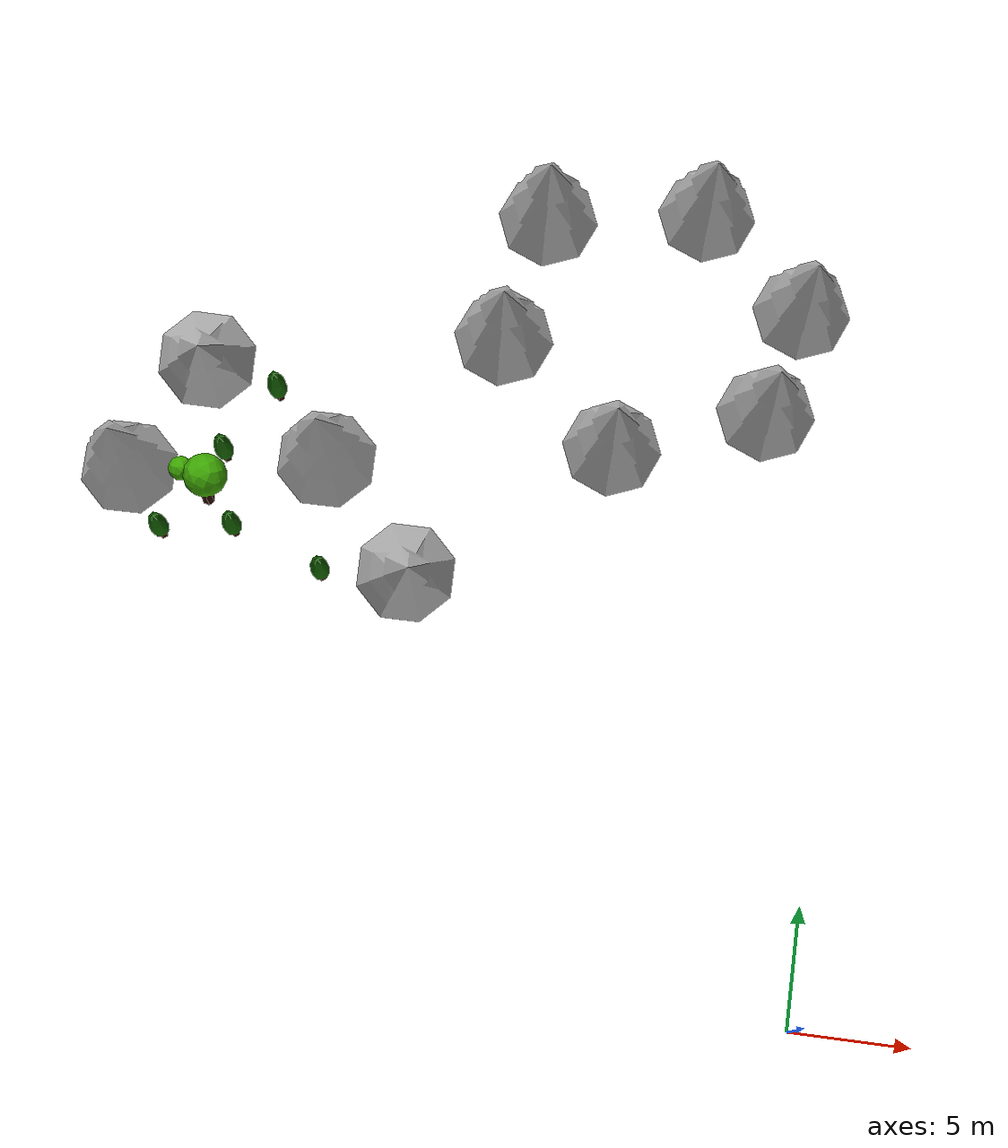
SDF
<sdf version="1.9">
 <world name="test">
  <model name="lowpolytree_1_7">
   <static>true</static>
   <link name="lowpolytree_1">
    <collision name="lowpolytree_1_collision">
     <geometry>
      <mesh>
       <uri>file:///home/ace-rv/rs1_ros2_ws/install/rs1_environment/share/rs1_environment/models/lowpolytree_1/model://lowpolytree_1/meshes/lowpolytree_1.dae</uri>
      </mesh>
     </geometry>
    </collision>
    <visual name="lowpolytree_1_visual">
     <geometry>
      <mesh>
       <uri>file:///home/ace-rv/rs1_ros2_ws/install/rs1_environment/share/rs1_environment/models/lowpolytree_1/model://lowpolytree_1/meshes/lowpolytree_1.dae</uri>
      </mesh>
     </geometry>
    </visual>
    <inertial>
     <mass>1</mass>
     <inertia><ixx>1</ixx><ixy>0</ixy><ixz>0</ixz><iyy>1</iyy><iyz>0</iyz><izz>1</izz></inertia>
    </inertial>
   </link>
   <pose>-2.75572 29.7328 0.320342 0 -0 0</pose>
  </model>
  <model name="lowpolytree_1_7_1">
   <static>true</static>
   <link name="lowpolytree_1">
    <collision name="lowpolytree_1_collision">
     <geometry>
      <mesh>
       <uri>file:///home/ace-rv/rs1_ros2_ws/install/rs1_environment/share/rs1_environment/models/lowpolytree_1/model://lowpolytree_1/meshes/lowpolytree_1.dae</uri>
      </mesh>
     </geometry>
    </collision>
    <visual name="lowpolytree_1_visual">
     <geometry>
      <mesh>
       <uri>file:///home/ace-rv/rs1_ros2_ws/install/rs1_environment/share/rs1_environment/models/lowpolytree_1/model://lowpolytree_1/meshes/lowpolytree_1.dae</uri>
      </mesh>
     </geometry>
    </visual>
    <inertial>
     <mass>1</mass>
     <inertia><ixx>1</ixx><ixy>0</ixy><ixz>0</ixz><iyy>1</iyy><iyz>0</iyz><izz>1</izz></inertia>
    </inertial>
   </link>
   <pose>-3.79295 25.0775 0.320342 0 -0 0</pose>
  </model>
  <model name="lowpolytree_1_7_2">
   <static>true</static>
   <link name="lowpolytree_1">
    <collision name="lowpolytree_1_collision">
     <geometry>
      <mesh>
       <uri>file:///home/ace-rv/rs1_ros2_ws/install/rs1_environment/share/rs1_environment/models/lowpolytree_1/model://lowpolytree_1/meshes/lowpolytree_1.dae</uri>
      </mesh>
     </geometry>
    </collision>
    <visual name="lowpolytree_1_visual">
     <geometry>
      <mesh>
       <uri>file:///home/ace-rv/rs1_ros2_ws/install/rs1_environment/share/rs1_environment/models/lowpolytree_1/model://lowpolytree_1/meshes/lowpolytree_1.dae</uri>
      </mesh>
     </geometry>
    </visual>
    <inertial>
     <mass>1</mass>
     <inertia><ixx>1</ixx><ixy>0</ixy><ixz>0</ixz><iyy>1</iyy><iyz>0</iyz><izz>1</izz></inertia>
    </inertial>
   </link>
   <pose>-7.23315 33.4938 0.472952 0 -0 0</pose>
  </model>
  <model name="lowpolytree_1_7_3">
   <static>true</static>
   <link name="lowpolytree_1">
    <collision name="lowpolytree_1_collision">
     <geometry>
      <mesh>
       <uri>file:///home/ace-rv/rs1_ros2_ws/install/rs1_environment/share/rs1_environment/models/lowpolytree_1/model://lowpolytree_1/meshes/lowpolytree_1.dae</uri>
      </mesh>
     </geometry>
    </collision>
    <visual name="lowpolytree_1_visual">
     <geometry>
      <mesh>
       <uri>file:///home/ace-rv/rs1_ros2_ws/install/rs1_environment/share/rs1_environment/models/lowpolytree_1/model://lowpolytree_1/meshes/lowpolytree_1.dae</uri>
      </mesh>
     </geometry>
    </visual>
    <inertial>
     <mass>1</mass>
     <inertia><ixx>1</ixx><ixy>0</ixy><ixz>0</ixz><iyy>1</iyy><iyz>0</iyz><izz>1</izz></inertia>
    </inertial>
   </link>
   <pose>-10.0095 22.7352 0.320342 0 -0 0</pose>
  </model>
  <model name="lowpolytree_1_7_4">
   <static>true</static>
   <link name="lowpolytree_1">
    <collision name="lowpolytree_1_collision">
     <geometry>
      <mesh>
       <uri>file:///home/ace-rv/rs1_ros2_ws/install/rs1_environment/share/rs1_environment/models/lowpolytree_1/model://lowpolytree_1/meshes/lowpolytree_1.dae</uri>
      </mesh>
     </geometry>
    </collision>
    <visual name="lowpolytree_1_visual">
     <geometry>
      <mesh>
       <uri>file:///home/ace-rv/rs1_ros2_ws/install/rs1_environment/share/rs1_environment/models/lowpolytree_1/model://lowpolytree_1/meshes/lowpolytree_1.dae</uri>
      </mesh>
     </geometry>
    </visual>
    <inertial>
     <mass>1</mass>
     <inertia><ixx>1</ixx><ixy>0</ixy><ixz>0</ixz><iyy>1</iyy><iyz>0</iyz><izz>1</izz></inertia>
    </inertial>
   </link>
   <pose>-13.8835 31.6748 2.38138 0 -0 0</pose>
  </model>
  <model name="lowpolytree_1_7_5">
   <static>true</static>
   <link name="lowpolytree_1">
    <collision name="lowpolytree_1_collision">
     <geometry>
      <mesh>
       <uri>file:///home/ace-rv/rs1_ros2_ws/install/rs1_environment/share/rs1_environment/models/lowpolytree_1/model://lowpolytree_1/meshes/lowpolytree_1.dae</uri>
      </mesh>
     </geometry>
    </collision>
    <visual name="lowpolytree_1_visual">
     <geometry>
      <mesh>
       <uri>file:///home/ace-rv/rs1_ros2_ws/install/rs1_environment/share/rs1_environment/models/lowpolytree_1/model://lowpolytree_1/meshes/lowpolytree_1.dae</uri>
      </mesh>
     </geometry>
    </visual>
    <inertial>
     <mass>1</mass>
     <inertia><ixx>1</ixx><ixy>0</ixy><ixz>0</ixz><iyy>1</iyy><iyz>0</iyz><izz>1</izz></inertia>
    </inertial>
   </link>
   <pose>-15.069 26.5047 1.57222 0 -0 0</pose>
  </model>
  <model name="lowpolytree_5_1_1_1_1">
   <static>true</static>
   <link name="lowpolytree_5">
    <collision name="lowpolytree_5_collision">
     <geometry>
      <mesh>
       <uri>file:///home/ace-rv/rs1_ros2_ws/install/rs1_environment/share/rs1_environment/models/lowpolytree_5/model://lowpolytree_5/meshes/lowpolytree_5.dae</uri>
      </mesh>
     </geometry>
    </collision>
    <visual name="lowpolytree_5_visual">
     <geometry>
      <mesh>
       <uri>file:///home/ace-rv/rs1_ros2_ws/install/rs1_environment/share/rs1_environment/models/lowpolytree_5/model://lowpolytree_5/meshes/lowpolytree_5.dae</uri>
      </mesh>
     </geometry>
    </visual>
    <inertial>
     <mass>1</mass>
     <inertia><ixx>1</ixx><ixy>0</ixy><ixz>0</ixz><iyy>1</iyy><iyz>0</iyz><izz>1</izz></inertia>
    </inertial>
   </link>
   <pose>-26.6989 18.8455 -0.101406 0 -0 1.30025</pose>
  </model>
  <model name="lowpolytree_4_1_1_5">
   <static>true</static>
   <link name="lowpolytree_4">
    <collision name="lowpolytree_4_collision">
     <geometry>
      <mesh>
       <uri>file:///home/ace-rv/rs1_ros2_ws/install/rs1_environment/share/rs1_environment/models/lowpolytree_4/model://lowpolytree_4/meshes/lowpolytree_4.dae</uri>
      </mesh>
     </geometry>
    </collision>
    <visual name="lowpolytree_4_visual">
     <geometry>
      <mesh>
       <uri>file:///home/ace-rv/rs1_ros2_ws/install/rs1_environment/share/rs1_environment/models/lowpolytree_4/model://lowpolytree_4/meshes/lowpolytree_4.dae</uri>
      </mesh>
     </geometry>
    </visual>
    <inertial>
     <mass>1</mass>
     <inertia><ixx>1</ixx><ixy>0</ixy><ixz>0</ixz><iyy>1</iyy><iyz>0</iyz><izz>1</izz></inertia>
    </inertial>
   </link>
   <pose>-28.3041 17.0098 0.168574 0 -0 0</pose>
  </model>
  <model name="lowpolytree_4_1_1_6">
   <static>true</static>
   <link name="lowpolytree_4">
    <collision name="lowpolytree_4_collision">
     <geometry>
      <mesh>
       <uri>file:///home/ace-rv/rs1_ros2_ws/install/rs1_environment/share/rs1_environment/models/lowpolytree_4/model://lowpolytree_4/meshes/lowpolytree_4.dae</uri>
      </mesh>
     </geometry>
    </collision>
    <visual name="lowpolytree_4_visual">
     <geometry>
      <mesh>
       <uri>file:///home/ace-rv/rs1_ros2_ws/install/rs1_environment/share/rs1_environment/models/lowpolytree_4/model://lowpolytree_4/meshes/lowpolytree_4.dae</uri>
      </mesh>
     </geometry>
    </visual>
    <inertial>
     <mass>1</mass>
     <inertia><ixx>1</ixx><ixy>0</ixy><ixz>0</ixz><iyy>1</iyy><iyz>0</iyz><izz>1</izz></inertia>
    </inertial>
   </link>
   <pose>-25.2471 17.3913 0.530243 0 -0 0</pose>
  </model>
  <model name="lowpolytree_4_1_1_7">
   <static>true</static>
   <link name="lowpolytree_4">
    <collision name="lowpolytree_4_collision">
     <geometry>
      <mesh>
       <uri>file:///home/ace-rv/rs1_ros2_ws/install/rs1_environment/share/rs1_environment/models/lowpolytree_4/model://lowpolytree_4/meshes/lowpolytree_4.dae</uri>
      </mesh>
     </geometry>
    </collision>
    <visual name="lowpolytree_4_visual">
     <geometry>
      <mesh>
       <uri>file:///home/ace-rv/rs1_ros2_ws/install/rs1_environment/share/rs1_environment/models/lowpolytree_4/model://lowpolytree_4/meshes/lowpolytree_4.dae</uri>
      </mesh>
     </geometry>
    </visual>
    <inertial>
     <mass>1</mass>
     <inertia><ixx>1</ixx><ixy>0</ixy><ixz>0</ixz><iyy>1</iyy><iyz>0</iyz><izz>1</izz></inertia>
    </inertial>
   </link>
   <pose>-26.1294 20.6155 0.376498 0 -0 0</pose>
  </model>
  <model name="lowpolytree_1_7_5_1">
   <static>true</static>
   <link name="lowpolytree_1">
    <collision name="lowpolytree_1_collision">
     <geometry>
      <mesh>
       <uri>file:///home/ace-rv/rs1_ros2_ws/install/rs1_environment/share/rs1_environment/models/lowpolytree_1/model://lowpolytree_1/meshes/lowpolytree_1.dae</uri>
      </mesh>
     </geometry>
    </collision>
    <visual name="lowpolytree_1_visual">
     <geometry>
      <mesh>
       <uri>file:///home/ace-rv/rs1_ros2_ws/install/rs1_environment/share/rs1_environment/models/lowpolytree_1/model://lowpolytree_1/meshes/lowpolytree_1.dae</uri>
      </mesh>
     </geometry>
    </visual>
    <inertial>
     <mass>1</mass>
     <inertia><ixx>1</ixx><ixy>0</ixy><ixz>0</ixz><iyy>1</iyy><iyz>0</iyz><izz>1</izz></inertia>
    </inertial>
   </link>
   <pose>-29.9991 19.4142 -0.279949 0 -0 0.409288</pose>
  </model>
  <model name="lowpolytree_1_7_5_1_2">
   <static>true</static>
   <link name="lowpolytree_1">
    <collision name="lowpolytree_1_collision">
     <geometry>
      <mesh>
       <uri>file:///home/ace-rv/rs1_ros2_ws/install/rs1_environment/share/rs1_environment/models/lowpolytree_1/model://lowpolytree_1/meshes/lowpolytree_1.dae</uri>
      </mesh>
     </geometry>
    </collision>
    <visual name="lowpolytree_1_visual">
     <geometry>
      <mesh>
       <uri>file:///home/ace-rv/rs1_ros2_ws/install/rs1_environment/share/rs1_environment/models/lowpolytree_1/model://lowpolytree_1/meshes/lowpolytree_1.dae</uri>
      </mesh>
     </geometry>
    </visual>
    <inertial>
     <mass>1</mass>
     <inertia><ixx>1</ixx><ixy>0</ixy><ixz>0</ixz><iyy>1</iyy><iyz>0</iyz><izz>1</izz></inertia>
    </inertial>
   </link>
   <pose>-17.8246 16.3125 1.72846 0.20564 0 0.409288</pose>
  </model>
  <model name="lowpolytree_1_7_5_1_2_1">
   <static>true</static>
   <link name="lowpolytree_1">
    <collision name="lowpolytree_1_collision">
     <geometry>
      <mesh>
       <uri>file:///home/ace-rv/rs1_ros2_ws/install/rs1_environment/share/rs1_environment/models/lowpolytree_1/model://lowpolytree_1/meshes/lowpolytree_1.dae</uri>
      </mesh>
     </geometry>
    </collision>
    <visual name="lowpolytree_1_visual">
     <geometry>
      <mesh>
       <uri>file:///home/ace-rv/rs1_ros2_ws/install/rs1_environment/share/rs1_environment/models/lowpolytree_1/model://lowpolytree_1/meshes/lowpolytree_1.dae</uri>
      </mesh>
     </geometry>
    </visual>
    <inertial>
     <mass>1</mass>
     <inertia><ixx>1</ixx><ixy>0</ixy><ixz>0</ixz><iyy>1</iyy><iyz>0</iyz><izz>1</izz></inertia>
    </inertial>
   </link>
   <pose>-21.4832 20.0309 2.65265 0 -0 0.409288</pose>
  </model>
  <model name="lowpolytree_4_1_1_6_1">
   <static>true</static>
   <link name="lowpolytree_4">
    <collision name="lowpolytree_4_collision">
     <geometry>
      <mesh>
       <uri>file:///home/ace-rv/rs1_ros2_ws/install/rs1_environment/share/rs1_environment/models/lowpolytree_4/model://lowpolytree_4/meshes/lowpolytree_4.dae</uri>
      </mesh>
     </geometry>
    </collision>
    <visual name="lowpolytree_4_visual">
     <geometry>
      <mesh>
       <uri>file:///home/ace-rv/rs1_ros2_ws/install/rs1_environment/share/rs1_environment/models/lowpolytree_4/model://lowpolytree_4/meshes/lowpolytree_4.dae</uri>
      </mesh>
     </geometry>
    </visual>
    <inertial>
     <mass>1</mass>
     <inertia><ixx>1</ixx><ixy>0</ixy><ixz>0</ixz><iyy>1</iyy><iyz>0</iyz><izz>1</izz></inertia>
    </inertial>
   </link>
   <pose>-21.2574 15.8432 1.17661 0 -0 0</pose>
  </model>
  <model name="lowpolytree_4_1_1_6_2">
   <static>true</static>
   <link name="lowpolytree_4">
    <collision name="lowpolytree_4_collision">
     <geometry>
      <mesh>
       <uri>file:///home/ace-rv/rs1_ros2_ws/install/rs1_environment/share/rs1_environment/models/lowpolytree_4/model://lowpolytree_4/meshes/lowpolytree_4.dae</uri>
      </mesh>
     </geometry>
    </collision>
    <visual name="lowpolytree_4_visual">
     <geometry>
      <mesh>
       <uri>file:///home/ace-rv/rs1_ros2_ws/install/rs1_environment/share/rs1_environment/models/lowpolytree_4/model://lowpolytree_4/meshes/lowpolytree_4.dae</uri>
      </mesh>
     </geometry>
    </visual>
    <inertial>
     <mass>1</mass>
     <inertia><ixx>1</ixx><ixy>0</ixy><ixz>0</ixz><iyy>1</iyy><iyz>0</iyz><izz>1</izz></inertia>
    </inertial>
   </link>
   <pose>-24.1447 23.2183 1.59943 0 -0 0</pose>
  </model>
  <model name="lowpolytree_1_7_5_1_3">
   <static>true</static>
   <link name="lowpolytree_1">
    <collision name="lowpolytree_1_collision">
     <geometry>
      <mesh>
       <uri>file:///home/ace-rv/rs1_ros2_ws/install/rs1_environment/share/rs1_environment/models/lowpolytree_1/model://lowpolytree_1/meshes/lowpolytree_1.dae</uri>
      </mesh>
     </geometry>
    </collision>
    <visual name="lowpolytree_1_visual">
     <geometry>
      <mesh>
       <uri>file:///home/ace-rv/rs1_ros2_ws/install/rs1_environment/share/rs1_environment/models/lowpolytree_1/model://lowpolytree_1/meshes/lowpolytree_1.dae</uri>
      </mesh>
     </geometry>
    </visual>
    <inertial>
     <mass>1</mass>
     <inertia><ixx>1</ixx><ixy>0</ixy><ixz>0</ixz><iyy>1</iyy><iyz>0</iyz><izz>1</izz></inertia>
    </inertial>
   </link>
   <pose>-27.2791 24.1877 1.99175 0.239722 0 0.409288</pose>
  </model>
 </world>
</sdf>
